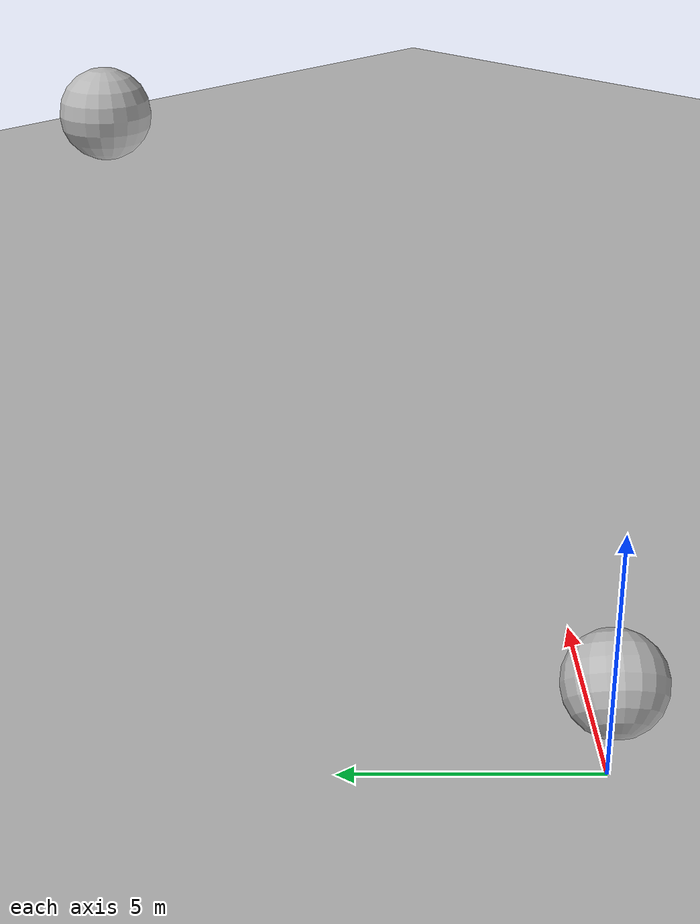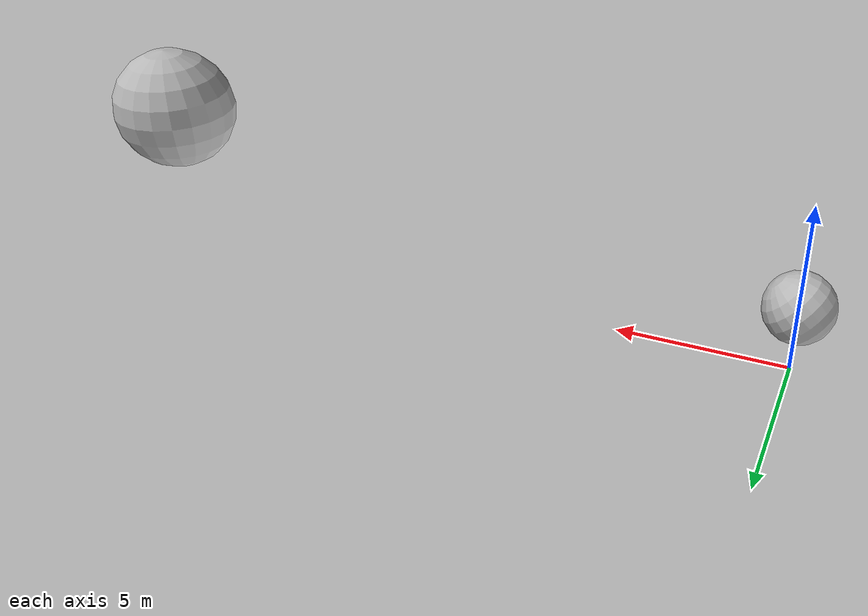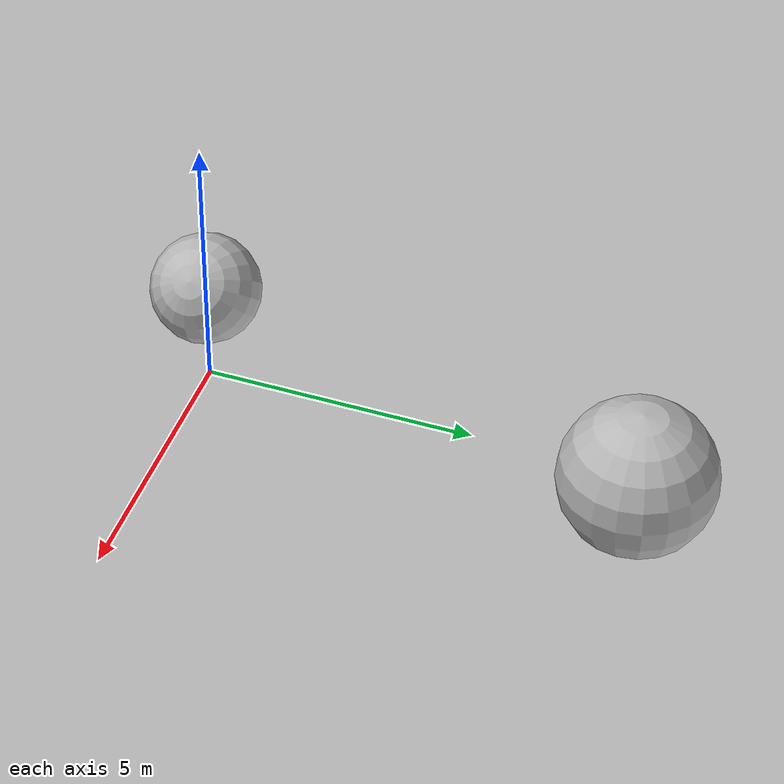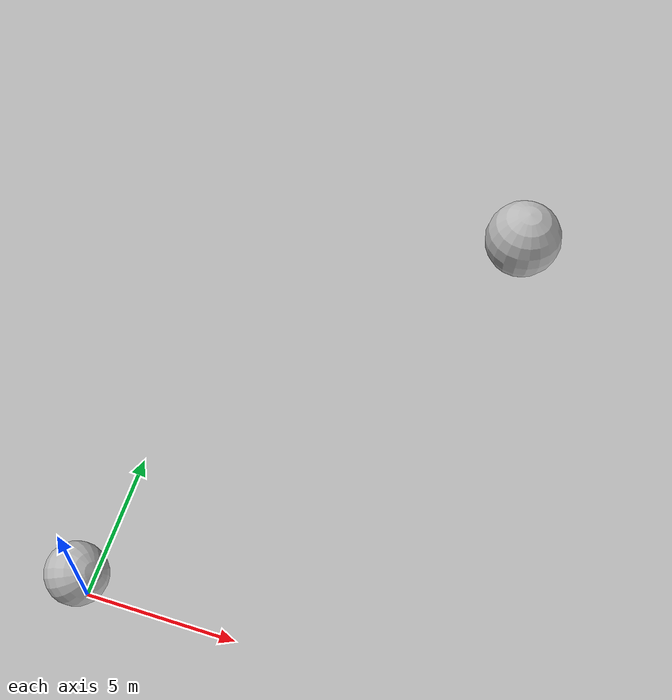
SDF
<?xml version="1.0" ?>
<sdf version="1.6">
  <world name="default">
    <plugin
      filename="gz-sim-physics-system"
      name="gz::sim::systems::v0::Physics">
    </plugin>
    <model name="sphere">
      <pose>0 0 2 0 0.78539816339 0</pose>
      <link name="sphere_link">
        <pose>0.0 0.0 0.0 0 0 0</pose>
        <inertial>
          <inertia>
            <ixx>0.4</ixx>
            <ixy>0</ixy>
            <ixz>0</ixz>
            <iyy>0.4</iyy>
            <iyz>0</iyz>
            <izz>0.4</izz>
          </inertia>
          <mass>1.0</mass>
        </inertial>
        <visual name="sphere_visual">
          <pose>0.0 0.0 0.0 0 0 0</pose>
          <geometry>
            <sphere>
              <radius>1</radius>
            </sphere>
          </geometry>
        </visual>
        <collision name="sphere_collision">
          <pose>0.0 0.0 0.0 0 0 0</pose>
          <geometry>
            <sphere>
              <radius>1</radius>
            </sphere>
          </geometry>
        </collision>
      </link>
    </model>
    <model name="box">
      <static>true</static>
      <pose>0 0 -0.5 0 0 0.78539816339</pose>
      <link name="box_link">
        <inertial>
          <inertia>
            <ixx>1</ixx>
            <ixy>0</ixy>
            <ixz>0</ixz>
            <iyy>1</iyy>
            <iyz>0</iyz>
            <izz>1</izz>
          </inertia>
          <mass>1.0</mass>
        </inertial>
        <pose>0.0 0.0 0.0 0 0 0</pose>
        <collision name="box_collision">
          <geometry>
            <box>
              <size>100 100 1</size>
            </box>
          </geometry>
        </collision>

        <visual name="box_visual">
          <geometry>
            <box>
              <size>100 100 1</size>
            </box>
          </geometry>
        </visual>
      </link>
    </model>
    <model name='sphere_no_gravity'>
      <link name='link'>
        <gravity>false</gravity>
        <pose>10 10 10 0 0 0</pose>
        <visual name='visual'>
          <geometry><sphere><radius>1</radius></sphere></geometry>
        </visual>
        <collision name='collision'>
          <geometry><sphere><radius>1</radius></sphere></geometry>
        </collision>
      </link>
    </model>
  </world>
</sdf>
